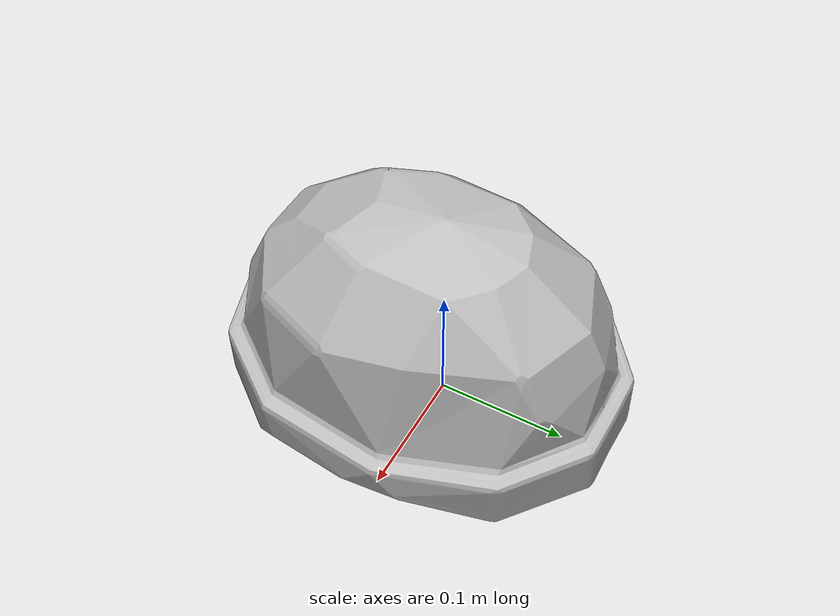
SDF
<?xml version="1.0" ?>

<sdf version="1.6">
  <model name="Hard hat">
    <static>true</static>
    <link name="link_0">

      <visual name="visual">
      <pose>0 0 0.04 1.57 0 0</pose>
        <geometry>
          <mesh>
            <uri>meshes/hard_hat.obj</uri>
          </mesh>
        </geometry>
      </visual>
      <collision name="collision_0">
      <pose>0 0 0.0 1.57 0 0</pose>
        <geometry>
          <mesh>
            <uri>meshes/hard_hat.obj</uri>
          </mesh>
        </geometry>
      </collision>
    </link>
  </model>
</sdf>
